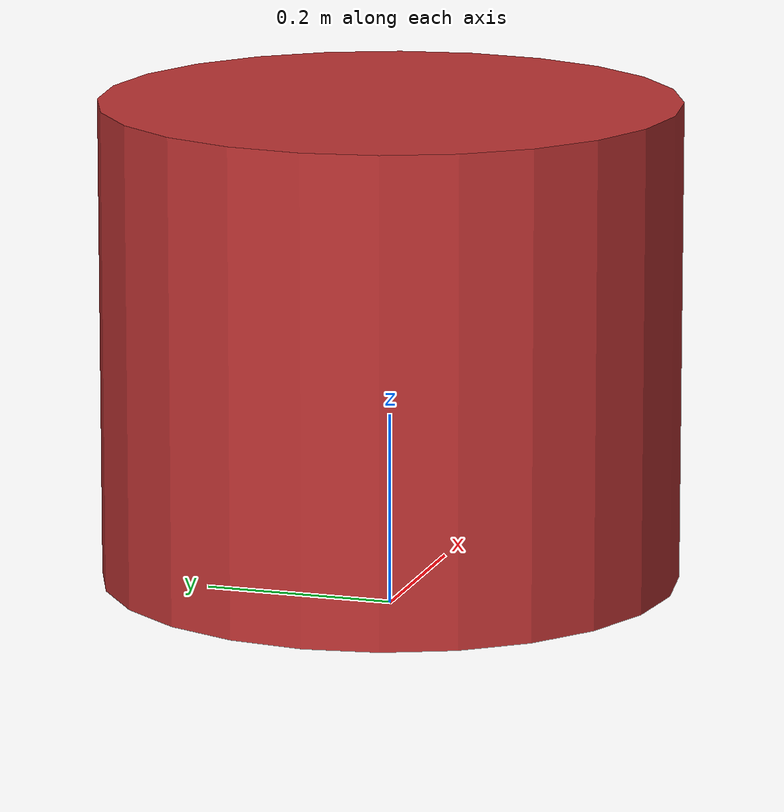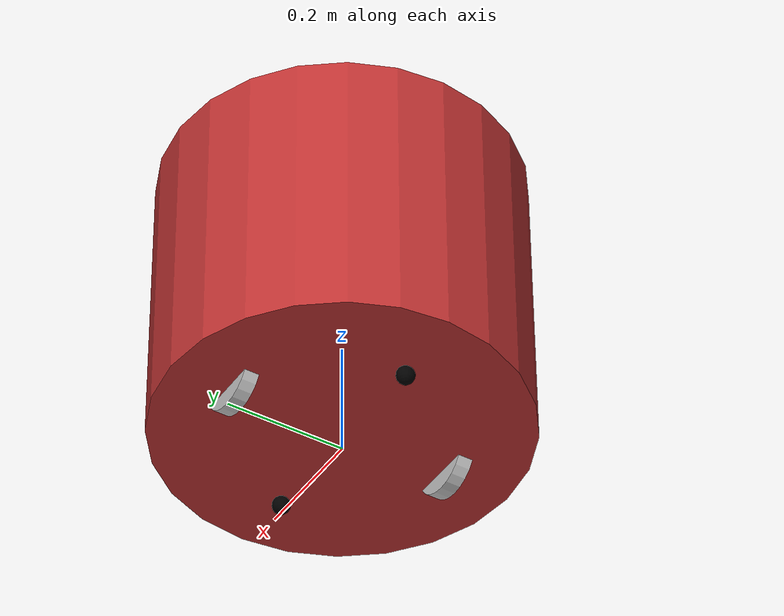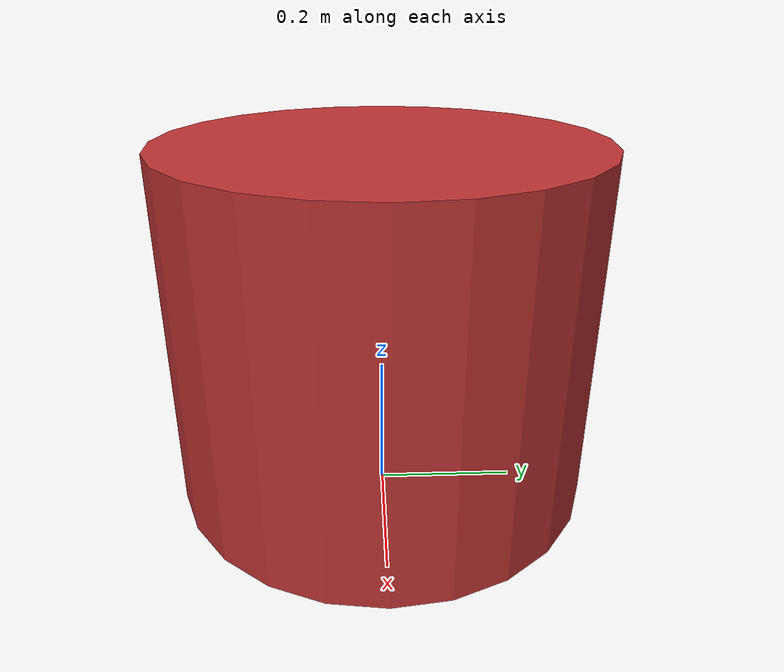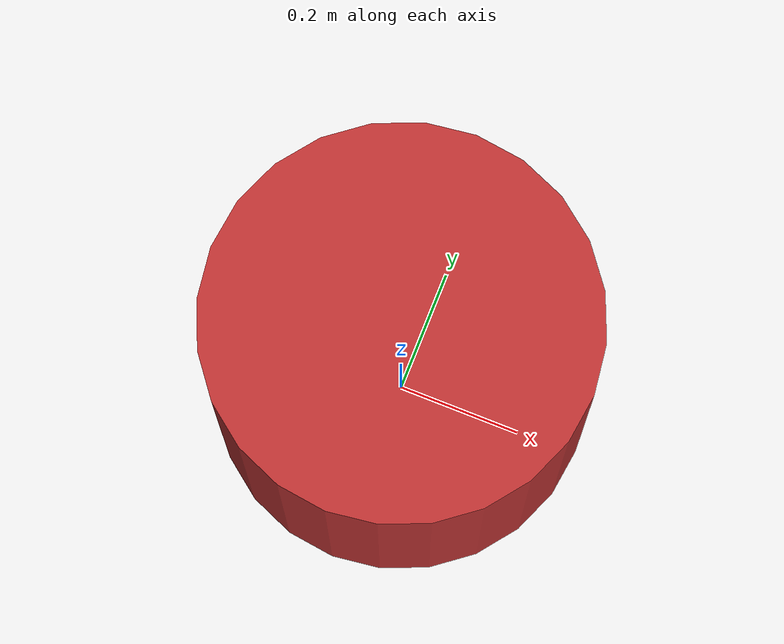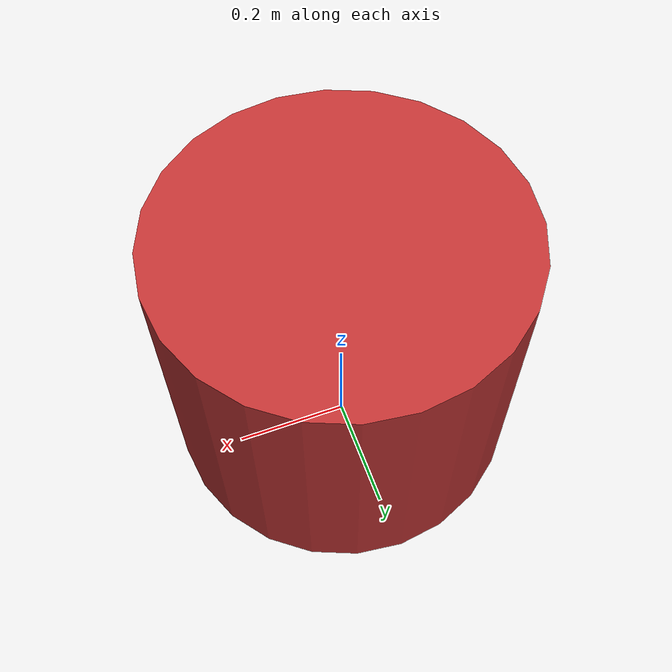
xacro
<?xml version="1.0"?>
<robot name="arm" xmlns:xacro="http://www.ros.org/wiki/xacro">

    <xacro:include filename="$(find mbot_description)/urdf/person_original/mbot_base_gazebo_people17.xacro" />

    <mbot_base_gazebo/>

</robot>

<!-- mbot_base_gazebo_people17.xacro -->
<robot name="mbot" xmlns:xacro="http://www.ros.org/wiki/xacro">

    <!-- PROPERTY LIST -->
    <xacro:property name="M_PI" value="3.1415926"/>
    <xacro:property name="base_mass"   value="20" />
    <xacro:property name="base_radius" value="0.30"/>
    <xacro:property name="base_length" value="0.5"/>

    <xacro:property name="wheel_mass"   value="2" />
    <xacro:property name="wheel_radius" value="0.06"/>
    <xacro:property name="wheel_length" value="0.025"/>
    <xacro:property name="wheel_joint_y" value="0.19"/>
    <xacro:property name="wheel_joint_z" value="0.22"/>

    <xacro:property name="caster_mass"    value="0.5" />
    <xacro:property name="caster_radius"  value="0.015"/> <!-- wheel_radius - ( base_length/2 - wheel_joint_z) -->
    <xacro:property name="caster_joint_x" value="0.18"/>

    <!-- Defining the colors used in this robot -->
    <material name="yellow">
        <color rgba="1 0.4 0 1"/>
    </material>
    <material name="black">
        <color rgba="0 0 0 0.95"/>
    </material>
    <material name="gray">
        <color rgba="0.75 0.75 0.75 1"/>
    </material>
    <material name="red">
        <color rgba="0.75 0.2 0.2 1"/>
    </material>

    <!-- Macro for inertia matrix -->
    <xacro:macro name="sphere_inertial_matrix" params="m r">
        <inertial>
            <mass value="${m}" />
            <inertia ixx="${2*m*r*r/5}" ixy="0" ixz="0"
                iyy="${2*m*r*r/5}" iyz="0"
                izz="${2*m*r*r/5}" />
        </inertial>
    </xacro:macro>

    <xacro:macro name="cylinder_inertial_matrix" params="m r h">
        <inertial>
            <mass value="${m}" />
            <inertia ixx="${m*(3*r*r+h*h)/12}" ixy = "0" ixz = "0"
                iyy="${m*(3*r*r+h*h)/12}" iyz = "0"
                izz="${m*r*r/2}" />
        </inertial>
    </xacro:macro>

    <!-- Macro for robot wheel -->
    <xacro:macro name="wheel" params="prefix reflect">
        <joint name="${prefix}_wheel_joint" type="continuous">
            <origin xyz="0 ${reflect*wheel_joint_y} ${-wheel_joint_z}" rpy="0 0 0"/>
            <parent link="base_link"/>
            <child link="${prefix}_wheel_link"/>
            <axis xyz="0 1 0"/>
        </joint>

        <link name="${prefix}_wheel_link">
            <visual>
                <origin xyz="0 0 0" rpy="${M_PI/2} 0 0" />
                <geometry>
                    <cylinder radius="${wheel_radius}" length = "${wheel_length}"/>
                </geometry>
                <material name="gray" />
            </visual>
            <collision>
                <origin xyz="0 0 0" rpy="${M_PI/2} 0 0" />
                <geometry>
                    <cylinder radius="${wheel_radius}" length = "${wheel_length}"/>
                </geometry>
            </collision>
            <xacro:cylinder_inertial_matrix  m="${wheel_mass}" r="${wheel_radius}" h="${wheel_length}" />
        </link>

        <gazebo reference="${prefix}_wheel_link">
            <material>Gazebo/Gray</material>
        </gazebo>

        <!-- Transmission is important to link the joints and the controller -->
        <transmission name="${prefix}_wheel_joint_trans">
            <type>transmission_interface/SimpleTransmission</type>
            <joint name="${prefix}_wheel_joint" >
                <hardwareInterface>hardware_interface/VelocityJointInterface</hardwareInterface>
            </joint>
            <actuator name="${prefix}_wheel_joint_motor">
                <hardwareInterface>hardware_interface/VelocityJointInterface</hardwareInterface>
                <mechanicalReduction>1</mechanicalReduction>
            </actuator>
        </transmission>
    </xacro:macro>

    <!-- Macro for robot caster -->
    <xacro:macro name="caster" params="prefix reflect">
        <joint name="${prefix}_caster_joint" type="continuous">
            <origin xyz="${reflect*caster_joint_x} 0 ${-(base_length/2 + caster_radius)}" rpy="0 0 0"/>
            <parent link="base_link"/>
            <child link="${prefix}_caster_link"/>
            <axis xyz="0 1 0"/>
        </joint>

        <link name="${prefix}_caster_link">
            <visual>
                <origin xyz="0 0 0" rpy="0 0 0"/>
                <geometry>
                    <sphere radius="${caster_radius}" />
                </geometry>
                <material name="black" />
            </visual>
            <collision>
                <origin xyz="0 0 0" rpy="0 0 0"/>
                <geometry>
                    <sphere radius="${caster_radius}" />
                </geometry>
            </collision>
            <xacro:sphere_inertial_matrix  m="${caster_mass}" r="${caster_radius}" />
        </link>

        <gazebo reference="${prefix}_caster_link">
            <material>Gazebo/Black</material>
        </gazebo>
    </xacro:macro>

    <xacro:macro name="mbot_base_gazebo">
        <link name="base_footprint">
            <visual>
                <origin xyz="0 0 0" rpy="0 0 0" />
                <geometry>
                    <box size="0.001 0.001 0.001" />
                </geometry>
            </visual>
        </link>
        <gazebo reference="base_footprint">
            <turnGravityOff>false</turnGravityOff>
        </gazebo>

        <joint name="base_footprint_joint" type="fixed">
            <origin xyz="0 0 ${base_length/2 + caster_radius*2}" rpy="0 0 0" />
            <parent link="base_footprint"/>
            <child link="base_link" />
        </joint>

        <link name="base_link">
            <visual>
                <origin xyz=" 0 0 0" rpy="0 0 0" />
                <geometry>
                    <cylinder length="${base_length}" radius="${base_radius}"/>
                </geometry>
                <material name="red" />
            </visual>
            <collision>
                <origin xyz=" 0 0 0" rpy="0 0 0" />
                <geometry>
                    <cylinder length="${base_length}" radius="${base_radius}"/>
                </geometry>
            </collision>
            <xacro:cylinder_inertial_matrix  m="${base_mass}" r="${base_radius}" h="${base_length}" />
        </link>

        <gazebo reference="base_link">
            <material>Gazebo/Black</material>
        </gazebo>

        <xacro:wheel prefix="left"  reflect="-1"/>
        <xacro:wheel prefix="right" reflect="1"/>

        <xacro:caster prefix="front" reflect="-1"/>
        <xacro:caster prefix="back"  reflect="1"/>

        <!-- controller -->
        <gazebo>
            <plugin name="differential_drive_controller"
                    filename="libgazebo_ros_diff_drive.so">
                <rosDebugLevel>Debug</rosDebugLevel>
                <publishWheelTF>true</publishWheelTF>
                <robotNamespace>/people17_robot</robotNamespace>
                <publishTf>1</publishTf>
                <publishWheelJointState>true</publishWheelJointState>
                <alwaysOn>true</alwaysOn>
                <updateRate>100.0</updateRate>
                <legacyMode>true</legacyMode>
                <leftJoint>left_wheel_joint</leftJoint>
                <rightJoint>right_wheel_joint</rightJoint>
                <wheelSeparation>${wheel_joint_y*2}</wheelSeparation>
                <wheelDiameter>${2*wheel_radius}</wheelDiameter>
                <broadcastTF>1</broadcastTF>
                <wheelTorque>30</wheelTorque>
                <wheelAcceleration>1.8</wheelAcceleration>
                <commandTopic>cmd_vel</commandTopic>
                <odometryFrame>odom</odometryFrame>
                <odometryTopic>odom</odometryTopic>
                <robotBaseFrame>base_footprint</robotBaseFrame>
            </plugin>
        </gazebo>
    </xacro:macro>

</robot>
